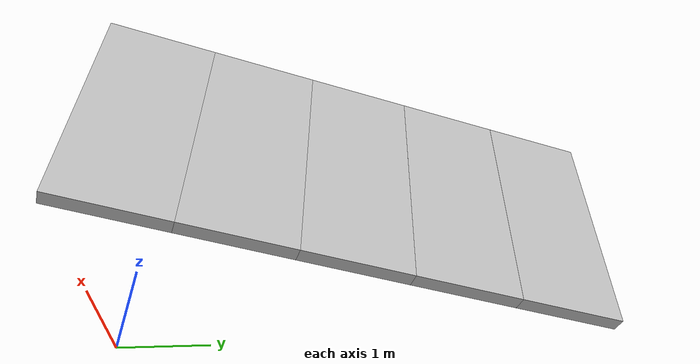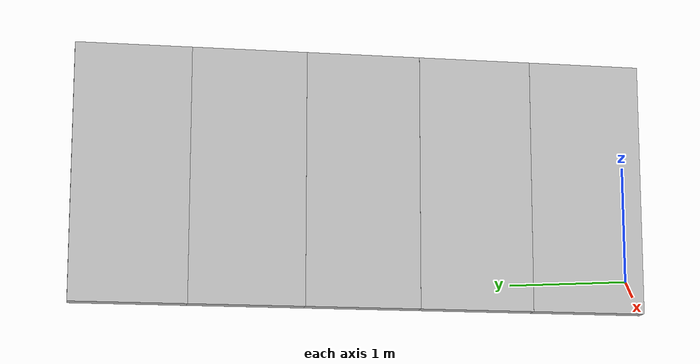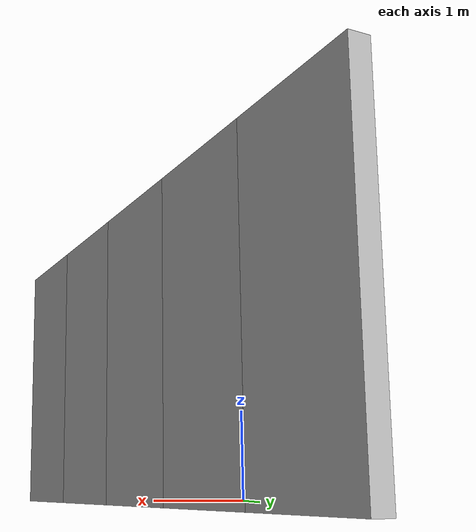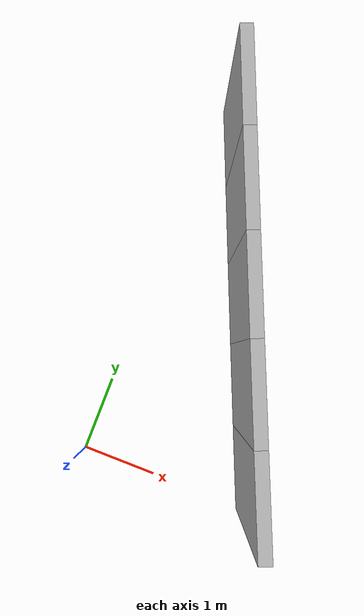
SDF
<?xml version="1.0" ?>
<sdf version="1.6">
  <model name="sps_0516">
    <pose frame="">0 0 0 0 -0 0</pose>
    <static>1</static>
    <self_collide>0</self_collide>
    <allow_auto_disable>0</allow_auto_disable>
    <link name="Wall4740">
      <kinematic>0</kinematic>
      <gravity>1</gravity>
      <self_collide>0</self_collide>
      <collision name="collision">
        <geometry>
          <box>
            <size>1.12131 0.15 2.5</size>
          </box>
        </geometry>
        <pose frame="">0 0 0 0 -0 0</pose>
      </collision>
      <visual name="visual">
        <geometry>
          <box>
            <size>1.12131 0.15 2.5</size>
          </box>
        </geometry>
        <pose frame="">0 0 0 0 -0 0</pose>
        <cast_shadows>1</cast_shadows>
        <transparency>0.0</transparency>
      </visual>
      <pose frame="">0.396568 4.66652 1.25 0 0 -1.18859</pose>
    </link>
    <link name="Wall4741">
      <kinematic>0</kinematic>
      <gravity>1</gravity>
      <self_collide>0</self_collide>
      <collision name="collision">
        <geometry>
          <box>
            <size>1.12141 0.15 2.5</size>
          </box>
        </geometry>
        <pose frame="">0 0 0 0 -0 0</pose>
      </collision>
      <visual name="visual">
        <geometry>
          <box>
            <size>1.12141 0.15 2.5</size>
          </box>
        </geometry>
        <pose frame="">0 0 0 0 -0 0</pose>
        <cast_shadows>1</cast_shadows>
        <transparency>0.0</transparency>
      </visual>
      <pose frame="">0.81536 3.6263 1.25 0 0 -1.18751</pose>
    </link>
    <link name="Wall4742">
      <kinematic>0</kinematic>
      <gravity>1</gravity>
      <self_collide>0</self_collide>
      <collision name="collision">
        <geometry>
          <box>
            <size>1.12124 0.15 2.5</size>
          </box>
        </geometry>
        <pose frame="">0 0 0 0 -0 0</pose>
      </collision>
      <visual name="visual">
        <geometry>
          <box>
            <size>1.12124 0.15 2.5</size>
          </box>
        </geometry>
        <pose frame="">0 0 0 0 -0 0</pose>
        <cast_shadows>1</cast_shadows>
        <transparency>0.0</transparency>
      </visual>
      <pose frame="">1.23534 2.58659 1.25 0 0 -1.18628</pose>
    </link>
    <link name="Wall4743">
      <kinematic>0</kinematic>
      <gravity>1</gravity>
      <self_collide>0</self_collide>
      <collision name="collision">
        <geometry>
          <box>
            <size>1.12143 0.15 2.5</size>
          </box>
        </geometry>
        <pose frame="">0 0 0 0 -0 0</pose>
      </collision>
      <visual name="visual">
        <geometry>
          <box>
            <size>1.12143 0.15 2.5</size>
          </box>
        </geometry>
        <pose frame="">0 0 0 0 -0 0</pose>
        <cast_shadows>1</cast_shadows>
        <transparency>0.0</transparency>
      </visual>
      <pose frame="">1.65664 1.54741 1.25 0 0 -1.18499</pose>
    </link>
    <link name="Wall4744">
      <kinematic>0</kinematic>
      <gravity>1</gravity>
      <self_collide>0</self_collide>
      <collision name="collision">
        <geometry>
          <box>
            <size>1.12126 0.15 2.5</size>
          </box>
        </geometry>
        <pose frame="">0 0 0 0 -0 0</pose>
      </collision>
      <visual name="visual">
        <geometry>
          <box>
            <size>1.12126 0.15 2.5</size>
          </box>
        </geometry>
        <pose frame="">0 0 0 0 -0 0</pose>
        <cast_shadows>1</cast_shadows>
        <transparency>0.0</transparency>
      </visual>
      <pose frame="">2.07915 0.508712 1.25 0 0 -1.18393</pose>
    </link>
  </model>
</sdf>
